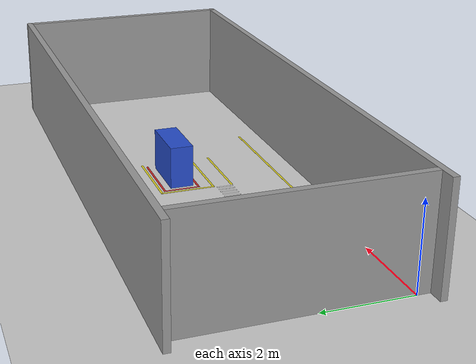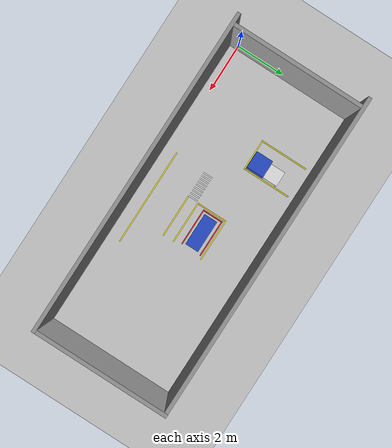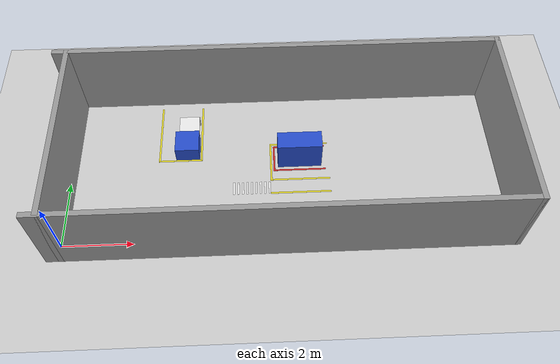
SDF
<sdf version="1.6">
 <world name="default">
  <model name="ground_plane">
   <static>1</static>
   <link name="link">
    <collision name="collision">
     <geometry><plane><normal>0 0 1</normal><size>100 100</size></plane></geometry>
     <surface><friction><ode><mu>100</mu><mu2>50</mu2></ode></friction></surface>
    </collision>
    <visual name="visual">
     <cast_shadows>0</cast_shadows>
     <geometry><plane><normal>0 0 1</normal><size>100 100</size></plane></geometry>
     <material>
      <script><uri>file://media/materials/scripts/gazebo.material</uri><name>Gazebo/Grey</name></script>
     </material>
    </visual>
   </link>
  </model>
  <model name="line4m">
   <link name="link_3">
    <inertial>
     <mass>1</mass>
     <inertia>
      <ixx>0.166667</ixx>
      <ixy>0</ixy>
      <ixz>0</ixz>
      <iyy>0.166667</iyy>
      <iyz>0</iyz>
      <izz>0.166667</izz>
     </inertia>
    </inertial>
    <visual name="visual">
     <geometry><box><size>0.05 4 0.001</size></box></geometry>
     <material>
      <lighting>1</lighting>
      <script><uri>file://media/materials/scripts/gazebo.material</uri><name>Gazebo/Yellow</name></script>
     </material>
    </visual>
   </link>
   <static>1</static>
   <pose>6.68674 0.22 0 0 -0 1.5708</pose>
  </model>
  <model name="zebraCrossing9">
   <link name="link_0">
    <inertial>
     <mass>1</mass>
     <inertia>
      <ixx>0.166667</ixx>
      <ixy>0</ixy>
      <ixz>0</ixz>
      <iyy>0.166667</iyy>
      <iyz>0</iyz>
      <izz>0.166667</izz>
     </inertia>
    </inertial>
    <visual name="visual">
     <geometry><box><size>0.05 0.4 0.001</size></box></geometry>
     <material>
      <lighting>1</lighting>
      <script><uri>file://media/materials/scripts/gazebo.material</uri><name>Gazebo/White</name></script>
      <shader type="pixel"><normal_map>__default__</normal_map></shader>
      <ambient>1 1 1 1</ambient>
      <diffuse>1 1 1 1</diffuse>
      <specular>0.01 0.01 0.01 1</specular>
      <emissive>0 0 0 1</emissive>
     </material>
     <cast_shadows>0</cast_shadows>
    </visual>
    <visual name="ModelPreview_0::link_0::visual_1">
     <pose>0.13 0 0 0 -0 0</pose>
     <geometry><box><size>0.05 0.4 0.001</size></box></geometry>
     <material>
      <lighting>1</lighting>
      <script><uri>file://media/materials/scripts/gazebo.material</uri><name>Gazebo/White</name></script>
      <shader type="pixel"><normal_map>__default__</normal_map></shader>
      <ambient>1 1 1 1</ambient>
      <diffuse>1 1 1 1</diffuse>
      <specular>0.01 0.01 0.01 1</specular>
      <emissive>0 0 0 1</emissive>
     </material>
     <cast_shadows>0</cast_shadows>
    </visual>
    <visual name="ModelPreview_0::link_0::visual_2">
     <pose>0.26 0 0 0 -0 0</pose>
     <geometry><box><size>0.05 0.4 0.001</size></box></geometry>
     <material>
      <lighting>1</lighting>
      <script><uri>file://media/materials/scripts/gazebo.material</uri><name>Gazebo/White</name></script>
      <shader type="pixel"><normal_map>__default__</normal_map></shader>
      <ambient>1 1 1 1</ambient>
      <diffuse>1 1 1 1</diffuse>
      <specular>0.01 0.01 0.01 1</specular>
      <emissive>0 0 0 1</emissive>
     </material>
     <cast_shadows>0</cast_shadows>
    </visual>
    <visual name="ModelPreview_0::link_0::visual_3">
     <pose>0.39 0 0 0 -0 0</pose>
     <geometry><box><size>0.05 0.4 0.001</size></box></geometry>
     <material>
      <lighting>1</lighting>
      <script><uri>file://media/materials/scripts/gazebo.material</uri><name>Gazebo/White</name></script>
      <shader type="pixel"><normal_map>__default__</normal_map></shader>
      <ambient>1 1 1 1</ambient>
      <diffuse>1 1 1 1</diffuse>
      <specular>0.01 0.01 0.01 1</specular>
      <emissive>0 0 0 1</emissive>
     </material>
     <cast_shadows>0</cast_shadows>
    </visual>
    <visual name="ModelPreview_0::link_0::visual_4">
     <pose>0.52 0 0 0 -0 0</pose>
     <geometry><box><size>0.05 0.4 0.001</size></box></geometry>
     <material>
      <lighting>1</lighting>
      <script><uri>file://media/materials/scripts/gazebo.material</uri><name>Gazebo/White</name></script>
      <shader type="pixel"><normal_map>__default__</normal_map></shader>
      <ambient>1 1 1 1</ambient>
      <diffuse>1 1 1 1</diffuse>
      <specular>0.01 0.01 0.01 1</specular>
      <emissive>0 0 0 1</emissive>
     </material>
     <cast_shadows>0</cast_shadows>
    </visual>
    <visual name="ModelPreview_0::link_0::visual_5">
     <pose>-0.13 0 0 0 -0 0</pose>
     <geometry><box><size>0.05 0.4 0.001</size></box></geometry>
     <material>
      <lighting>1</lighting>
      <script><uri>file://media/materials/scripts/gazebo.material</uri><name>Gazebo/White</name></script>
      <shader type="pixel"><normal_map>__default__</normal_map></shader>
      <ambient>1 1 1 1</ambient>
      <diffuse>1 1 1 1</diffuse>
      <specular>0.01 0.01 0.01 1</specular>
      <emissive>0 0 0 1</emissive>
     </material>
     <cast_shadows>0</cast_shadows>
    </visual>
    <visual name="ModelPreview_0::link_0::visual_6">
     <pose>-0.26 0 0 0 -0 0</pose>
     <geometry><box><size>0.05 0.4 0.001</size></box></geometry>
     <material>
      <lighting>1</lighting>
      <script><uri>file://media/materials/scripts/gazebo.material</uri><name>Gazebo/White</name></script>
      <shader type="pixel"><normal_map>__default__</normal_map></shader>
      <ambient>1 1 1 1</ambient>
      <diffuse>1 1 1 1</diffuse>
      <specular>0.01 0.01 0.01 1</specular>
      <emissive>0 0 0 1</emissive>
     </material>
     <cast_shadows>0</cast_shadows>
    </visual>
    <visual name="ModelPreview_0::link_0::visual_7">
     <pose>-0.39 0 0 0 -0 0</pose>
     <geometry><box><size>0.05 0.4 0.001</size></box></geometry>
     <material>
      <lighting>1</lighting>
      <script><uri>file://media/materials/scripts/gazebo.material</uri><name>Gazebo/White</name></script>
      <shader type="pixel"><normal_map>__default__</normal_map></shader>
      <ambient>1 1 1 1</ambient>
      <diffuse>1 1 1 1</diffuse>
      <specular>0.01 0.01 0.01 1</specular>
      <emissive>0 0 0 1</emissive>
     </material>
     <cast_shadows>0</cast_shadows>
    </visual>
    <visual name="ModelPreview_0::link_0::visual_8">
     <pose>-0.52 0 0 0 -0 0</pose>
     <geometry><box><size>0.05 0.4 0.001</size></box></geometry>
     <material>
      <lighting>1</lighting>
      <script><uri>file://media/materials/scripts/gazebo.material</uri><name>Gazebo/White</name></script>
      <shader type="pixel"><normal_map>__default__</normal_map></shader>
      <ambient>1 1 1 1</ambient>
      <diffuse>1 1 1 1</diffuse>
      <specular>0.01 0.01 0.01 1</specular>
      <emissive>0 0 0 1</emissive>
     </material>
     <cast_shadows>0</cast_shadows>
    </visual>
   </link>
   <static>1</static>
   <pose>5.27693 1.67864 0 0 -0 0</pose>
  </model>
  <model name="line175cm_0">
   <link name="link_1">
    <inertial>
     <mass>1</mass>
     <inertia>
      <ixx>0.166667</ixx>
      <ixy>0</ixy>
      <ixz>0</ixz>
      <iyy>0.166667</iyy>
      <iyz>0</iyz>
      <izz>0.166667</izz>
     </inertia>
    </inertial>
    <visual name="visual">
     <geometry><box><size>1.75 0.05 0.001</size></box></geometry>
     <material>
      <script><uri>file://media/materials/scripts/gazebo.material</uri><name>Gazebo/Yellow</name></script>
     </material>
    </visual>
    <collision name="collision">
     <geometry><box><size>1.75 0.05 1e-05</size></box></geometry>
     <surface>
      <friction>
       <ode><mu>1</mu><mu2>1</mu2><fdir1>0 0 0</fdir1><slip1>0</slip1><slip2>0</slip2></ode>
       <torsional>
        <coefficient>1</coefficient>
        <patch_radius>0</patch_radius>
        <surface_radius>0</surface_radius>
        <use_patch_radius>1</use_patch_radius>
        <ode><slip>0</slip></ode>
       </torsional>
      </friction>
      <bounce><restitution_coefficient>0</restitution_coefficient><threshold>1e+06</threshold></bounce>
      <contact>
       <collide_without_contact>0</collide_without_contact>
       <collide_without_contact_bitmask>1</collide_without_contact_bitmask>
       <collide_bitmask>1</collide_bitmask>
       <ode>
        <soft_cfm>0</soft_cfm>
        <soft_erp>0.2</soft_erp>
        <kp>1e+13</kp>
        <kd>1</kd>
        <max_vel>0.01</max_vel>
        <min_depth>0</min_depth>
       </ode>
       <bullet>
        <split_impulse>1</split_impulse>
        <split_impulse_penetration_threshold>-0.01</split_impulse_penetration_threshold>
        <soft_cfm>0</soft_cfm>
        <soft_erp>0.2</soft_erp>
        <kp>1e+13</kp>
        <kd>1</kd>
       </bullet>
      </contact>
     </surface>
    </collision>
   </link>
   <static>1</static>
   <pose>6.71174 3.19 0 0 -0 0</pose>
  </model>
  <model name="line175cm_0_clone">
   <link name="link_1">
    <inertial>
     <mass>1</mass>
     <inertia>
      <ixx>0.166667</ixx>
      <ixy>0</ixy>
      <ixz>0</ixz>
      <iyy>0.166667</iyy>
      <iyz>0</iyz>
      <izz>0.166667</izz>
     </inertia>
    </inertial>
    <visual name="visual">
     <geometry><box><size>1.75 0.05 0.001</size></box></geometry>
     <material>
      <script><uri>file://media/materials/scripts/gazebo.material</uri><name>Gazebo/Yellow</name></script>
     </material>
    </visual>
    <collision name="collision">
     <geometry><box><size>1.75 0.05 1e-05</size></box></geometry>
     <surface>
      <friction>
       <ode><mu>1</mu><mu2>1</mu2><fdir1>0 0 0</fdir1><slip1>0</slip1><slip2>0</slip2></ode>
       <torsional>
        <coefficient>1</coefficient>
        <patch_radius>0</patch_radius>
        <surface_radius>0</surface_radius>
        <use_patch_radius>1</use_patch_radius>
        <ode><slip>0</slip></ode>
       </torsional>
      </friction>
      <bounce><restitution_coefficient>0</restitution_coefficient><threshold>1e+06</threshold></bounce>
      <contact>
       <collide_without_contact>0</collide_without_contact>
       <collide_without_contact_bitmask>1</collide_without_contact_bitmask>
       <collide_bitmask>1</collide_bitmask>
       <ode>
        <soft_cfm>0</soft_cfm>
        <soft_erp>0.2</soft_erp>
        <kp>1e+13</kp>
        <kd>1</kd>
        <max_vel>0.01</max_vel>
        <min_depth>0</min_depth>
       </ode>
       <bullet>
        <split_impulse>1</split_impulse>
        <split_impulse_penetration_threshold>-0.01</split_impulse_penetration_threshold>
        <soft_cfm>0</soft_cfm>
        <soft_erp>0.2</soft_erp>
        <kp>1e+13</kp>
        <kd>1</kd>
       </bullet>
      </contact>
     </surface>
    </collision>
   </link>
   <static>1</static>
   <pose>6.71174 1.94 0 0 -0 0</pose>
  </model>
  <model name="line175cm_0_clone_clone">
   <link name="link_1">
    <inertial>
     <mass>1</mass>
     <inertia>
      <ixx>0.166667</ixx>
      <ixy>0</ixy>
      <ixz>0</ixz>
      <iyy>0.166667</iyy>
      <iyz>0</iyz>
      <izz>0.166667</izz>
     </inertia>
    </inertial>
    <visual name="visual">
     <geometry><box><size>1.75 0.05 0.001</size></box></geometry>
     <material>
      <script><uri>file://media/materials/scripts/gazebo.material</uri><name>Gazebo/Yellow</name></script>
     </material>
    </visual>
    <collision name="collision">
     <geometry><box><size>1.75 0.05 1e-05</size></box></geometry>
     <surface>
      <friction>
       <ode><mu>1</mu><mu2>1</mu2><fdir1>0 0 0</fdir1><slip1>0</slip1><slip2>0</slip2></ode>
       <torsional>
        <coefficient>1</coefficient>
        <patch_radius>0</patch_radius>
        <surface_radius>0</surface_radius>
        <use_patch_radius>1</use_patch_radius>
        <ode><slip>0</slip></ode>
       </torsional>
      </friction>
      <bounce><restitution_coefficient>0</restitution_coefficient><threshold>1e+06</threshold></bounce>
      <contact>
       <collide_without_contact>0</collide_without_contact>
       <collide_without_contact_bitmask>1</collide_without_contact_bitmask>
       <collide_bitmask>1</collide_bitmask>
       <ode>
        <soft_cfm>0</soft_cfm>
        <soft_erp>0.2</soft_erp>
        <kp>1e+13</kp>
        <kd>1</kd>
        <max_vel>0.01</max_vel>
        <min_depth>0</min_depth>
       </ode>
       <bullet>
        <split_impulse>1</split_impulse>
        <split_impulse_penetration_threshold>-0.01</split_impulse_penetration_threshold>
        <soft_cfm>0</soft_cfm>
        <soft_erp>0.2</soft_erp>
        <kp>1e+13</kp>
        <kd>1</kd>
       </bullet>
      </contact>
     </surface>
    </collision>
   </link>
   <static>1</static>
   <pose>6.71174 1.49 0 0 -0 0</pose>
  </model>
  <model name="line130cm_0_clone">
   <link name="link_1">
    <inertial>
     <mass>1</mass>
     <inertia>
      <ixx>0.166667</ixx>
      <ixy>0</ixy>
      <ixz>0</ixz>
      <iyy>0.166667</iyy>
      <iyz>0</iyz>
      <izz>0.166667</izz>
     </inertia>
    </inertial>
    <visual name="visual">
     <geometry><box><size>1.3 0.05 0.001</size></box></geometry>
     <material>
      <script><uri>file://media/materials/scripts/gazebo.material</uri><name>Gazebo/Yellow</name></script>
     </material>
    </visual>
    <collision name="collision">
     <geometry><box><size>1.3 0.05 1e-05</size></box></geometry>
     <surface>
      <friction>
       <ode><mu>1</mu><mu2>1</mu2><fdir1>0 0 0</fdir1><slip1>0</slip1><slip2>0</slip2></ode>
       <torsional>
        <coefficient>1</coefficient>
        <patch_radius>0</patch_radius>
        <surface_radius>0</surface_radius>
        <use_patch_radius>1</use_patch_radius>
        <ode><slip>0</slip></ode>
       </torsional>
      </friction>
      <bounce><restitution_coefficient>0</restitution_coefficient><threshold>1e+06</threshold></bounce>
      <contact>
       <collide_without_contact>0</collide_without_contact>
       <collide_without_contact_bitmask>1</collide_without_contact_bitmask>
       <collide_bitmask>1</collide_bitmask>
       <ode>
        <soft_cfm>0</soft_cfm>
        <soft_erp>0.2</soft_erp>
        <kp>1e+13</kp>
        <kd>1</kd>
        <max_vel>0.01</max_vel>
        <min_depth>0</min_depth>
       </ode>
       <bullet>
        <split_impulse>1</split_impulse>
        <split_impulse_penetration_threshold>-0.01</split_impulse_penetration_threshold>
        <soft_cfm>0</soft_cfm>
        <soft_erp>0.2</soft_erp>
        <kp>1e+13</kp>
        <kd>1</kd>
       </bullet>
      </contact>
     </surface>
    </collision>
   </link>
   <static>1</static>
   <pose>5.86174 2.565 0 0 -0 1.5708</pose>
  </model>
  <model name="line2m">
   <link name="link_0">
    <inertial>
     <mass>1</mass>
     <inertia>
      <ixx>0.166667</ixx>
      <ixy>0</ixy>
      <ixz>0</ixz>
      <iyy>0.166667</iyy>
      <iyz>0</iyz>
      <izz>0.166667</izz>
     </inertia>
    </inertial>
    <visual name="visual">
     <geometry><box><size>2 0.05 0.001</size></box></geometry>
     <material>
      <lighting>1</lighting>
      <script><uri>file://media/materials/scripts/gazebo.material</uri><name>Gazebo/Yellow</name></script>
     </material>
    </visual>
    <collision name="collision">
     <geometry><box><size>2 0.05 1e-05</size></box></geometry>
     <surface>
      <friction>
       <ode><mu>1</mu><mu2>1</mu2><fdir1>0 0 0</fdir1><slip1>0</slip1><slip2>0</slip2></ode>
       <torsional>
        <coefficient>1</coefficient>
        <patch_radius>0</patch_radius>
        <surface_radius>0</surface_radius>
        <use_patch_radius>1</use_patch_radius>
        <ode><slip>0</slip></ode>
       </torsional>
      </friction>
      <bounce><restitution_coefficient>0</restitution_coefficient><threshold>1e+06</threshold></bounce>
      <contact>
       <collide_without_contact>0</collide_without_contact>
       <collide_without_contact_bitmask>1</collide_without_contact_bitmask>
       <collide_bitmask>1</collide_bitmask>
       <ode>
        <soft_cfm>0</soft_cfm>
        <soft_erp>0.2</soft_erp>
        <kp>1e+13</kp>
        <kd>1</kd>
        <max_vel>0.01</max_vel>
        <min_depth>0</min_depth>
       </ode>
       <bullet>
        <split_impulse>1</split_impulse>
        <split_impulse_penetration_threshold>-0.01</split_impulse_penetration_threshold>
        <soft_cfm>0</soft_cfm>
        <soft_erp>0.2</soft_erp>
        <kp>1e+13</kp>
        <kd>1</kd>
       </bullet>
      </contact>
     </surface>
    </collision>
   </link>
   <static>1</static>
   <pose>3.7864 3.69 0 0 -0 1.5708</pose>
  </model>
  <model name="line2m_3">
   <link name="link_0">
    <inertial>
     <mass>1</mass>
     <inertia>
      <ixx>0.166667</ixx>
      <ixy>0</ixy>
      <ixz>0</ixz>
      <iyy>0.166667</iyy>
      <iyz>0</iyz>
      <izz>0.166667</izz>
     </inertia>
    </inertial>
    <visual name="visual">
     <geometry><box><size>2 0.05 0.001</size></box></geometry>
     <material>
      <lighting>1</lighting>
      <script><uri>file://media/materials/scripts/gazebo.material</uri><name>Gazebo/Yellow</name></script>
     </material>
    </visual>
    <collision name="collision">
     <geometry><box><size>2 0.05 1e-05</size></box></geometry>
     <surface>
      <friction>
       <ode><mu>1</mu><mu2>1</mu2><fdir1>0 0 0</fdir1><slip1>0</slip1><slip2>0</slip2></ode>
       <torsional>
        <coefficient>1</coefficient>
        <patch_radius>0</patch_radius>
        <surface_radius>0</surface_radius>
        <use_patch_radius>1</use_patch_radius>
        <ode><slip>0</slip></ode>
       </torsional>
      </friction>
      <bounce><restitution_coefficient>0</restitution_coefficient><threshold>1e+06</threshold></bounce>
      <contact>
       <collide_without_contact>0</collide_without_contact>
       <collide_without_contact_bitmask>1</collide_without_contact_bitmask>
       <collide_bitmask>1</collide_bitmask>
       <ode>
        <soft_cfm>0</soft_cfm>
        <soft_erp>0.2</soft_erp>
        <kp>1e+13</kp>
        <kd>1</kd>
        <max_vel>0.01</max_vel>
        <min_depth>0</min_depth>
       </ode>
       <bullet>
        <split_impulse>1</split_impulse>
        <split_impulse_penetration_threshold>-0.01</split_impulse_penetration_threshold>
        <soft_cfm>0</soft_cfm>
        <soft_erp>0.2</soft_erp>
        <kp>1e+13</kp>
        <kd>1</kd>
       </bullet>
      </contact>
     </surface>
    </collision>
   </link>
   <static>1</static>
   <pose>2.53674 3.69 0 0 -0 1.5708</pose>
  </model>
  <model name="line130cm_1">
   <link name="link_1">
    <inertial>
     <mass>1</mass>
     <inertia>
      <ixx>0.166667</ixx>
      <ixy>0</ixy>
      <ixz>0</ixz>
      <iyy>0.166667</iyy>
      <iyz>0</iyz>
      <izz>0.166667</izz>
     </inertia>
    </inertial>
    <visual name="visual">
     <geometry><box><size>1.3 0.05 0.001</size></box></geometry>
     <material>
      <script><uri>file://media/materials/scripts/gazebo.material</uri><name>Gazebo/Yellow</name></script>
     </material>
    </visual>
    <collision name="collision">
     <geometry><box><size>1.3 0.05 1e-05</size></box></geometry>
     <surface>
      <friction>
       <ode><mu>1</mu><mu2>1</mu2><fdir1>0 0 0</fdir1><slip1>0</slip1><slip2>0</slip2></ode>
       <torsional>
        <coefficient>1</coefficient>
        <patch_radius>0</patch_radius>
        <surface_radius>0</surface_radius>
        <use_patch_radius>1</use_patch_radius>
        <ode><slip>0</slip></ode>
       </torsional>
      </friction>
      <bounce><restitution_coefficient>0</restitution_coefficient><threshold>1e+06</threshold></bounce>
      <contact>
       <collide_without_contact>0</collide_without_contact>
       <collide_without_contact_bitmask>1</collide_without_contact_bitmask>
       <collide_bitmask>1</collide_bitmask>
       <ode>
        <soft_cfm>0</soft_cfm>
        <soft_erp>0.2</soft_erp>
        <kp>1e+13</kp>
        <kd>1</kd>
        <max_vel>0.01</max_vel>
        <min_depth>0</min_depth>
       </ode>
       <bullet>
        <split_impulse>1</split_impulse>
        <split_impulse_penetration_threshold>-0.01</split_impulse_penetration_threshold>
        <soft_cfm>0</soft_cfm>
        <soft_erp>0.2</soft_erp>
        <kp>1e+13</kp>
        <kd>1</kd>
       </bullet>
      </contact>
     </surface>
    </collision>
   </link>
   <static>1</static>
   <pose>3.16174 2.715 0 0 -0 0</pose>
  </model>
  <model name="robot_kolu_070">
   <link name="link_0">
    <inertial>
     <mass>1</mass>
     <inertia>
      <ixx>0.166667</ixx>
      <ixy>0</ixy>
      <ixz>0</ixz>
      <iyy>0.166667</iyy>
      <iyz>0</iyz>
      <izz>0.166667</izz>
     </inertia>
    </inertial>
    <visual name="visual">
     <geometry><box><size>0.7 0.7 1</size></box></geometry>
     <material>
      <lighting>1</lighting>
      <script><uri>file://media/materials/scripts/gazebo.material</uri><name>Gazebo/Blue</name></script>
     </material>
    </visual>
    <collision name="collision">
     <geometry><box><size>0.7 0.7 1</size></box></geometry>
     <surface>
      <friction>
       <ode><mu>1</mu><mu2>1</mu2><fdir1>0 0 0</fdir1><slip1>0</slip1><slip2>0</slip2></ode>
       <torsional>
        <coefficient>1</coefficient>
        <patch_radius>0</patch_radius>
        <surface_radius>0</surface_radius>
        <use_patch_radius>1</use_patch_radius>
        <ode><slip>0</slip></ode>
       </torsional>
      </friction>
      <bounce><restitution_coefficient>0</restitution_coefficient><threshold>1e+06</threshold></bounce>
      <contact>
       <collide_without_contact>0</collide_without_contact>
       <collide_without_contact_bitmask>1</collide_without_contact_bitmask>
       <collide_bitmask>1</collide_bitmask>
       <ode>
        <soft_cfm>0</soft_cfm>
        <soft_erp>0.2</soft_erp>
        <kp>1e+13</kp>
        <kd>1</kd>
        <max_vel>0.01</max_vel>
        <min_depth>0</min_depth>
       </ode>
       <bullet>
        <split_impulse>1</split_impulse>
        <split_impulse_penetration_threshold>-0.01</split_impulse_penetration_threshold>
        <soft_cfm>0</soft_cfm>
        <soft_erp>0.2</soft_erp>
        <kp>1e+13</kp>
        <kd>1</kd>
       </bullet>
      </contact>
     </surface>
    </collision>
   </link>
   <static>1</static>
   <pose>3.386 3.09999 0 0 -0 0</pose>
  </model>
  <model name="line155cm">
   <link name="link_1">
    <inertial>
     <mass>1</mass>
     <inertia>
      <ixx>0.166667</ixx>
      <ixy>0</ixy>
      <ixz>0</ixz>
      <iyy>0.166667</iyy>
      <iyz>0</iyz>
      <izz>0.166667</izz>
     </inertia>
    </inertial>
    <visual name="visual">
     <geometry><box><size>1.55 0.05 0.001</size></box></geometry>
     <material>
      <script><uri>file://media/materials/scripts/gazebo.material</uri><name>Gazebo/Red</name></script>
     </material>
    </visual>
    <collision name="collision">
     <geometry><box><size>1.55 0.05 1e-05</size></box></geometry>
     <surface>
      <friction>
       <ode><mu>1</mu><mu2>1</mu2><fdir1>0 0 0</fdir1><slip1>0</slip1><slip2>0</slip2></ode>
       <torsional>
        <coefficient>1</coefficient>
        <patch_radius>0</patch_radius>
        <surface_radius>0</surface_radius>
        <use_patch_radius>1</use_patch_radius>
        <ode><slip>0</slip></ode>
       </torsional>
      </friction>
      <bounce><restitution_coefficient>0</restitution_coefficient><threshold>1e+06</threshold></bounce>
      <contact>
       <collide_without_contact>0</collide_without_contact>
       <collide_without_contact_bitmask>1</collide_without_contact_bitmask>
       <collide_bitmask>1</collide_bitmask>
       <ode>
        <soft_cfm>0</soft_cfm>
        <soft_erp>0.2</soft_erp>
        <kp>1e+13</kp>
        <kd>1</kd>
        <max_vel>0.01</max_vel>
        <min_depth>0</min_depth>
       </ode>
       <bullet>
        <split_impulse>1</split_impulse>
        <split_impulse_penetration_threshold>-0.01</split_impulse_penetration_threshold>
        <soft_cfm>0</soft_cfm>
        <soft_erp>0.2</soft_erp>
        <kp>1e+13</kp>
        <kd>1</kd>
       </bullet>
      </contact>
     </surface>
    </collision>
   </link>
   <static>1</static>
   <pose>6.71174 3.09 0 0 -0 0</pose>
  </model>
  <model name="line155cm_clone">
   <link name="link_1">
    <inertial>
     <mass>1</mass>
     <inertia>
      <ixx>0.166667</ixx>
      <ixy>0</ixy>
      <ixz>0</ixz>
      <iyy>0.166667</iyy>
      <iyz>0</iyz>
      <izz>0.166667</izz>
     </inertia>
    </inertial>
    <visual name="visual">
     <geometry><box><size>1.55 0.05 0.001</size></box></geometry>
     <material>
      <script><uri>file://media/materials/scripts/gazebo.material</uri><name>Gazebo/Red</name></script>
     </material>
    </visual>
    <collision name="collision">
     <geometry><box><size>1.55 0.05 1e-05</size></box></geometry>
     <surface>
      <friction>
       <ode><mu>1</mu><mu2>1</mu2><fdir1>0 0 0</fdir1><slip1>0</slip1><slip2>0</slip2></ode>
       <torsional>
        <coefficient>1</coefficient>
        <patch_radius>0</patch_radius>
        <surface_radius>0</surface_radius>
        <use_patch_radius>1</use_patch_radius>
        <ode><slip>0</slip></ode>
       </torsional>
      </friction>
      <bounce><restitution_coefficient>0</restitution_coefficient><threshold>1e+06</threshold></bounce>
      <contact>
       <collide_without_contact>0</collide_without_contact>
       <collide_without_contact_bitmask>1</collide_without_contact_bitmask>
       <collide_bitmask>1</collide_bitmask>
       <ode>
        <soft_cfm>0</soft_cfm>
        <soft_erp>0.2</soft_erp>
        <kp>1e+13</kp>
        <kd>1</kd>
        <max_vel>0.01</max_vel>
        <min_depth>0</min_depth>
       </ode>
       <bullet>
        <split_impulse>1</split_impulse>
        <split_impulse_penetration_threshold>-0.01</split_impulse_penetration_threshold>
        <soft_cfm>0</soft_cfm>
        <soft_erp>0.2</soft_erp>
        <kp>1e+13</kp>
        <kd>1</kd>
       </bullet>
      </contact>
     </surface>
    </collision>
   </link>
   <static>1</static>
   <pose>6.71174 2.267 0 0 -0 0</pose>
  </model>
  <model name="line87cm">
   <link name="link_1">
    <inertial>
     <mass>1</mass>
     <inertia>
      <ixx>0.166667</ixx>
      <ixy>0</ixy>
      <ixz>0</ixz>
      <iyy>0.166667</iyy>
      <iyz>0</iyz>
      <izz>0.166667</izz>
     </inertia>
    </inertial>
    <visual name="visual">
     <geometry><box><size>0.87 0.05 0.001</size></box></geometry>
     <material>
      <script><uri>file://media/materials/scripts/gazebo.material</uri><name>Gazebo/Red</name></script>
     </material>
    </visual>
    <collision name="collision">
     <geometry><box><size>0.87 0.05 1e-05</size></box></geometry>
     <surface>
      <friction>
       <ode><mu>1</mu><mu2>1</mu2><fdir1>0 0 0</fdir1><slip1>0</slip1><slip2>0</slip2></ode>
       <torsional>
        <coefficient>1</coefficient>
        <patch_radius>0</patch_radius>
        <surface_radius>0</surface_radius>
        <use_patch_radius>1</use_patch_radius>
        <ode><slip>0</slip></ode>
       </torsional>
      </friction>
      <bounce><restitution_coefficient>0</restitution_coefficient><threshold>1e+06</threshold></bounce>
      <contact>
       <collide_without_contact>0</collide_without_contact>
       <collide_without_contact_bitmask>1</collide_without_contact_bitmask>
       <collide_bitmask>1</collide_bitmask>
       <ode>
        <soft_cfm>0</soft_cfm>
        <soft_erp>0.2</soft_erp>
        <kp>1e+13</kp>
        <kd>1</kd>
        <max_vel>0.01</max_vel>
        <min_depth>0</min_depth>
       </ode>
       <bullet>
        <split_impulse>1</split_impulse>
        <split_impulse_penetration_threshold>-0.01</split_impulse_penetration_threshold>
        <soft_cfm>0</soft_cfm>
        <soft_erp>0.2</soft_erp>
        <kp>1e+13</kp>
        <kd>1</kd>
       </bullet>
      </contact>
     </surface>
    </collision>
   </link>
   <static>1</static>
   <pose>5.96174 2.68 0 0 -0 1.5708</pose>
  </model>
  <model name="makine1_129x54">
   <link name="link_1">
    <inertial>
     <mass>1</mass>
     <inertia>
      <ixx>0.166667</ixx>
      <ixy>0</ixy>
      <ixz>0</ixz>
      <iyy>0.166667</iyy>
      <iyz>0</iyz>
      <izz>0.166667</izz>
     </inertia>
    </inertial>
    <visual name="visual">
     <pose>0 0 0.5 0 -0 0</pose>
     <geometry><box><size>1.29 0.54 1</size></box></geometry>
     <material>
      <lighting>1</lighting>
      <script><uri>file://media/materials/scripts/gazebo.material</uri><name>Gazebo/Blue</name></script>
     </material>
    </visual>
    <collision name="collision">
     <pose>0 0 0.5 0 -0 0</pose>
     <geometry><box><size>1.29 0.54 1</size></box></geometry>
     <surface>
      <friction>
       <ode><mu>1</mu><mu2>1</mu2><fdir1>0 0 0</fdir1><slip1>0</slip1><slip2>0</slip2></ode>
       <torsional>
        <coefficient>1</coefficient>
        <patch_radius>0</patch_radius>
        <surface_radius>0</surface_radius>
        <use_patch_radius>1</use_patch_radius>
        <ode><slip>0</slip></ode>
       </torsional>
      </friction>
      <bounce><restitution_coefficient>0</restitution_coefficient><threshold>1e+06</threshold></bounce>
      <contact>
       <collide_without_contact>0</collide_without_contact>
       <collide_without_contact_bitmask>1</collide_without_contact_bitmask>
       <collide_bitmask>1</collide_bitmask>
       <ode>
        <soft_cfm>0</soft_cfm>
        <soft_erp>0.2</soft_erp>
        <kp>1e+13</kp>
        <kd>1</kd>
        <max_vel>0.01</max_vel>
        <min_depth>0</min_depth>
       </ode>
       <bullet>
        <split_impulse>1</split_impulse>
        <split_impulse_penetration_threshold>-0.01</split_impulse_penetration_threshold>
        <soft_cfm>0</soft_cfm>
        <soft_erp>0.2</soft_erp>
        <kp>1e+13</kp>
        <kd>1</kd>
       </bullet>
      </contact>
     </surface>
    </collision>
   </link>
   <static>1</static>
   <pose>6.71174 2.646 0 0 -0 0</pose>
  </model>
  <model name="demoWall22082019_v2">
   <pose>6.15495 2.29837 0 0 -0 0</pose>
   <link name="Wall_0">
    <collision name="Wall_0_Collision">
     <geometry><box><size>12.995 0.15 2.5</size></box></geometry>
     <pose>0 0 1.25 0 -0 0</pose>
    </collision>
    <visual name="Wall_0_Visual">
     <pose>0 0 1.25 0 -0 0</pose>
     <geometry><box><size>12.995 0.15 2.5</size></box></geometry>
     <material>
      <script><uri>file://media/materials/scripts/gazebo.material</uri><name>Gazebo/Grey</name></script>
      <ambient>1 1 1 1</ambient>
     </material>
     <meta><layer>0</layer></meta>
    </visual>
    <pose>-0 -2.665 0 0 -0 0</pose>
   </link>
   <link name="Wall_3">
    <collision name="Wall_3_Collision">
     <geometry><box><size>5.48 0.15 2.5</size></box></geometry>
     <pose>0 0 1.25 0 -0 0</pose>
    </collision>
    <visual name="Wall_3_Visual">
     <pose>0 0 1.25 0 -0 0</pose>
     <geometry><box><size>5.48 0.15 2.5</size></box></geometry>
     <material>
      <script><uri>file://media/materials/scripts/gazebo.material</uri><name>Gazebo/Grey</name></script>
      <ambient>1 1 1 1</ambient>
     </material>
     <meta><layer>0</layer></meta>
    </visual>
    <pose>6.4225 0 0 0 -0 1.5708</pose>
   </link>
   <link name="Wall_5">
    <collision name="Wall_5_Collision">
     <geometry><box><size>12.995 0.15 2.5</size></box></geometry>
     <pose>0 0 1.25 0 -0 0</pose>
    </collision>
    <visual name="Wall_5_Visual">
     <pose>0 0 1.25 0 -0 0</pose>
     <geometry><box><size>12.995 0.15 2.5</size></box></geometry>
     <material>
      <script><uri>file://media/materials/scripts/gazebo.material</uri><name>Gazebo/Grey</name></script>
      <ambient>1 1 1 1</ambient>
     </material>
     <meta><layer>0</layer></meta>
    </visual>
    <pose>-0 2.665 0 0 -0 3.14159</pose>
   </link>
   <link name="Wall_6">
    <collision name="Wall_6_Collision">
     <geometry><box><size>5.48 0.15 2.5</size></box></geometry>
     <pose>0 0 1.25 0 -0 0</pose>
    </collision>
    <visual name="Wall_6_Visual">
     <pose>0 0 1.25 0 -0 0</pose>
     <geometry><box><size>5.48 0.15 2.5</size></box></geometry>
     <material>
      <script><uri>file://media/materials/scripts/gazebo.material</uri><name>Gazebo/Grey</name></script>
      <ambient>1 1 1 1</ambient>
     </material>
     <meta><layer>0</layer></meta>
    </visual>
    <pose>-6.08 0 0 0 -0 -1.5708</pose>
   </link>
   <static>1</static>
  </model>
  <model name="sehpa">
   <link name="link_0">
    <inertial>
     <mass>1</mass>
     <inertia>
      <ixx>0.166667</ixx>
      <ixy>0</ixy>
      <ixz>0</ixz>
      <iyy>0.166667</iyy>
      <iyz>0</iyz>
      <izz>0.166667</izz>
     </inertia>
    </inertial>
    <visual name="ModelPreview_0::link_0::visual_1">
     <pose>0.275 0.275 -0.175 0 -0 0</pose>
     <geometry><box><size>0.05 0.05 0.35</size></box></geometry>
     <material>
      <lighting>1</lighting>
      <script><uri>file://media/materials/scripts/gazebo.material</uri><name>Gazebo/White</name></script>
     </material>
    </visual>
    <visual name="ModelPreview_0::link_0::visual_2">
     <pose>0.275 -0.275 -0.175 0 -0 0</pose>
     <geometry><box><size>0.05 0.05 0.35</size></box></geometry>
     <material>
      <lighting>1</lighting>
      <script><uri>file://media/materials/scripts/gazebo.material</uri><name>Gazebo/White</name></script>
     </material>
    </visual>
    <visual name="visual">
     <geometry><box><size>0.6 0.6 0.05</size></box></geometry>
     <material>
      <lighting>1</lighting>
      <script><uri>file://media/materials/scripts/gazebo.material</uri><name>Gazebo/White</name></script>
     </material>
    </visual>
    <visual name="ModelPreview_0::link_0::visual_3">
     <pose>-0.275 -0.275 -0.175 0 -0 0</pose>
     <geometry><box><size>0.05 0.05 0.35</size></box></geometry>
     <material>
      <lighting>1</lighting>
      <script><uri>file://media/materials/scripts/gazebo.material</uri><name>Gazebo/White</name></script>
     </material>
    </visual>
    <visual name="ModelPreview_0::link_0::visual_4">
     <pose>-0.275 0.275 -0.175 0 -0 0</pose>
     <geometry><box><size>0.05 0.05 0.35</size></box></geometry>
     <material>
      <lighting>1</lighting>
      <script><uri>file://media/materials/scripts/gazebo.material</uri><name>Gazebo/White</name></script>
     </material>
    </visual>
    <collision name="collision">
     <geometry><box><size>0.6 0.6 0.05</size></box></geometry>
     <surface>
      <friction>
       <ode><mu>1</mu><mu2>1</mu2><fdir1>0 0 0</fdir1><slip1>0</slip1><slip2>0</slip2></ode>
       <torsional>
        <coefficient>1</coefficient>
        <patch_radius>0</patch_radius>
        <surface_radius>0</surface_radius>
        <use_patch_radius>1</use_patch_radius>
        <ode><slip>0</slip></ode>
       </torsional>
      </friction>
      <bounce><restitution_coefficient>0</restitution_coefficient><threshold>1e+06</threshold></bounce>
      <contact>
       <collide_without_contact>0</collide_without_contact>
       <collide_without_contact_bitmask>1</collide_without_contact_bitmask>
       <collide_bitmask>1</collide_bitmask>
       <ode>
        <soft_cfm>0</soft_cfm>
        <soft_erp>0.2</soft_erp>
        <kp>1e+13</kp>
        <kd>1</kd>
        <max_vel>0.01</max_vel>
        <min_depth>0</min_depth>
       </ode>
       <bullet>
        <split_impulse>1</split_impulse>
        <split_impulse_penetration_threshold>-0.01</split_impulse_penetration_threshold>
        <soft_cfm>0</soft_cfm>
        <soft_erp>0.2</soft_erp>
        <kp>1e+13</kp>
        <kd>1</kd>
       </bullet>
      </contact>
     </surface>
    </collision>
    <collision name="collision_1">
     <pose>0.275 0.275 -0.275 0 -0 0</pose>
     <geometry><box><size>0.05 0.05 0.35</size></box></geometry>
     <surface>
      <friction>
       <ode><mu>1</mu><mu2>1</mu2><fdir1>0 0 0</fdir1><slip1>0</slip1><slip2>0</slip2></ode>
       <torsional>
        <coefficient>1</coefficient>
        <patch_radius>0</patch_radius>
        <surface_radius>0</surface_radius>
        <use_patch_radius>1</use_patch_radius>
        <ode><slip>0</slip></ode>
       </torsional>
      </friction>
      <bounce><restitution_coefficient>0</restitution_coefficient><threshold>1e+06</threshold></bounce>
      <contact>
       <collide_without_contact>0</collide_without_contact>
       <collide_without_contact_bitmask>1</collide_without_contact_bitmask>
       <collide_bitmask>1</collide_bitmask>
       <ode>
        <soft_cfm>0</soft_cfm>
        <soft_erp>0.2</soft_erp>
        <kp>1e+13</kp>
        <kd>1</kd>
        <max_vel>0.01</max_vel>
        <min_depth>0</min_depth>
       </ode>
       <bullet>
        <split_impulse>1</split_impulse>
        <split_impulse_penetration_threshold>-0.01</split_impulse_penetration_threshold>
        <soft_cfm>0</soft_cfm>
        <soft_erp>0.2</soft_erp>
        <kp>1e+13</kp>
        <kd>1</kd>
       </bullet>
      </contact>
     </surface>
    </collision>
    <collision name="collision_2">
     <pose>0.275 -0.275 -0.175 0 -0 0</pose>
     <geometry><box><size>0.05 0.05 0.35</size></box></geometry>
     <surface>
      <friction>
       <ode><mu>1</mu><mu2>1</mu2><fdir1>0 0 0</fdir1><slip1>0</slip1><slip2>0</slip2></ode>
       <torsional>
        <coefficient>1</coefficient>
        <patch_radius>0</patch_radius>
        <surface_radius>0</surface_radius>
        <use_patch_radius>1</use_patch_radius>
        <ode><slip>0</slip></ode>
       </torsional>
      </friction>
      <bounce><restitution_coefficient>0</restitution_coefficient><threshold>1e+06</threshold></bounce>
      <contact>
       <collide_without_contact>0</collide_without_contact>
       <collide_without_contact_bitmask>1</collide_without_contact_bitmask>
       <collide_bitmask>1</collide_bitmask>
       <ode>
        <soft_cfm>0</soft_cfm>
        <soft_erp>0.2</soft_erp>
        <kp>1e+13</kp>
        <kd>1</kd>
        <max_vel>0.01</max_vel>
        <min_depth>0</min_depth>
       </ode>
       <bullet>
        <split_impulse>1</split_impulse>
        <split_impulse_penetration_threshold>-0.01</split_impulse_penetration_threshold>
        <soft_cfm>0</soft_cfm>
        <soft_erp>0.2</soft_erp>
        <kp>1e+13</kp>
        <kd>1</kd>
       </bullet>
      </contact>
     </surface>
    </collision>
    <collision name="collision_3">
     <pose>-0.275 0.275 -0.175 0 -0 0</pose>
     <geometry><box><size>0.05 0.05 0.35</size></box></geometry>
     <surface>
      <friction>
       <ode><mu>1</mu><mu2>1</mu2><fdir1>0 0 0</fdir1><slip1>0</slip1><slip2>0</slip2></ode>
       <torsional>
        <coefficient>1</coefficient>
        <patch_radius>0</patch_radius>
        <surface_radius>0</surface_radius>
        <use_patch_radius>1</use_patch_radius>
        <ode><slip>0</slip></ode>
       </torsional>
      </friction>
      <bounce><restitution_coefficient>0</restitution_coefficient><threshold>1e+06</threshold></bounce>
      <contact>
       <collide_without_contact>0</collide_without_contact>
       <collide_without_contact_bitmask>1</collide_without_contact_bitmask>
       <collide_bitmask>1</collide_bitmask>
       <ode>
        <soft_cfm>0</soft_cfm>
        <soft_erp>0.2</soft_erp>
        <kp>1e+13</kp>
        <kd>1</kd>
        <max_vel>0.01</max_vel>
        <min_depth>0</min_depth>
       </ode>
       <bullet>
        <split_impulse>1</split_impulse>
        <split_impulse_penetration_threshold>-0.01</split_impulse_penetration_threshold>
        <soft_cfm>0</soft_cfm>
        <soft_erp>0.2</soft_erp>
        <kp>1e+13</kp>
        <kd>1</kd>
       </bullet>
      </contact>
     </surface>
    </collision>
    <collision name="collision_4">
     <pose>-0.275 -0.275 -0.175 0 -0 0</pose>
     <geometry><box><size>0.05 0.05 0.35</size></box></geometry>
     <surface>
      <friction>
       <ode><mu>1</mu><mu2>1</mu2><fdir1>0 0 0</fdir1><slip1>0</slip1><slip2>0</slip2></ode>
       <torsional>
        <coefficient>1</coefficient>
        <patch_radius>0</patch_radius>
        <surface_radius>0</surface_radius>
        <use_patch_radius>1</use_patch_radius>
        <ode><slip>0</slip></ode>
       </torsional>
      </friction>
      <bounce><restitution_coefficient>0</restitution_coefficient><threshold>1e+06</threshold></bounce>
      <contact>
       <collide_without_contact>0</collide_without_contact>
       <collide_without_contact_bitmask>1</collide_without_contact_bitmask>
       <collide_bitmask>1</collide_bitmask>
       <ode>
        <soft_cfm>0</soft_cfm>
        <soft_erp>0.2</soft_erp>
        <kp>1e+13</kp>
        <kd>1</kd>
        <max_vel>0.01</max_vel>
        <min_depth>0</min_depth>
       </ode>
       <bullet>
        <split_impulse>1</split_impulse>
        <split_impulse_penetration_threshold>-0.01</split_impulse_penetration_threshold>
        <soft_cfm>0</soft_cfm>
        <soft_erp>0.2</soft_erp>
        <kp>1e+13</kp>
        <kd>1</kd>
       </bullet>
      </contact>
     </surface>
    </collision>
   </link>
   <static>1</static>
   <pose>3.42916 3.76708 0.349403 0 -0 0</pose>
  </model>
 </world>
</sdf>
